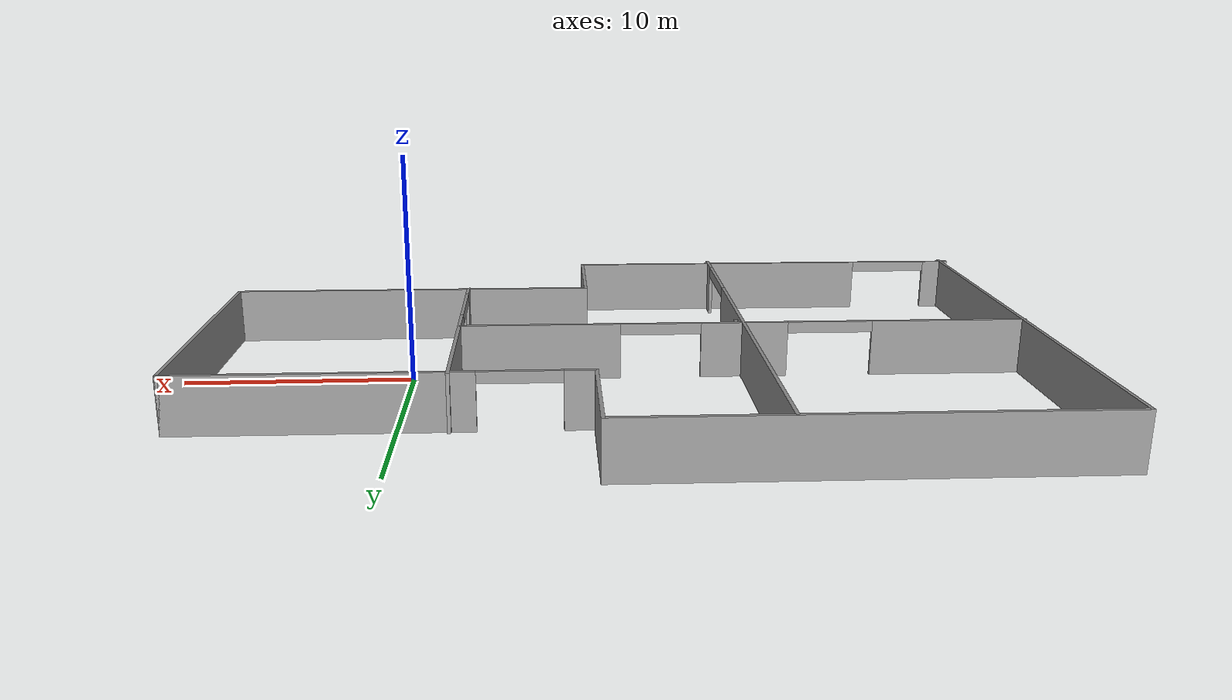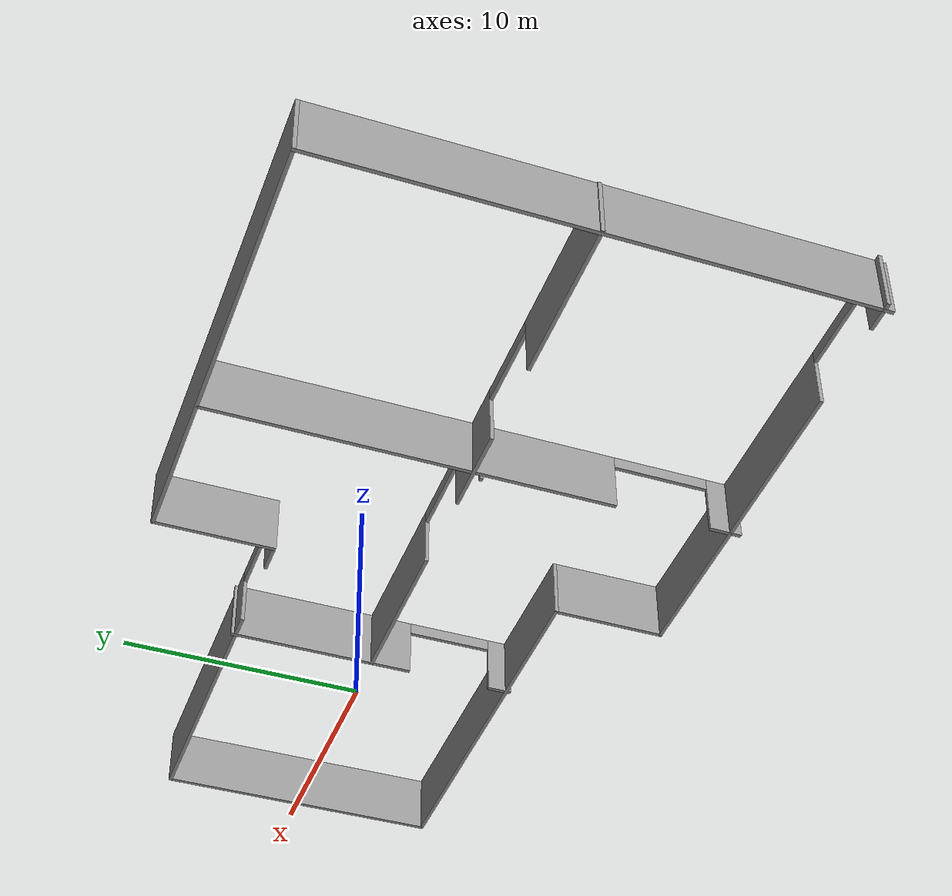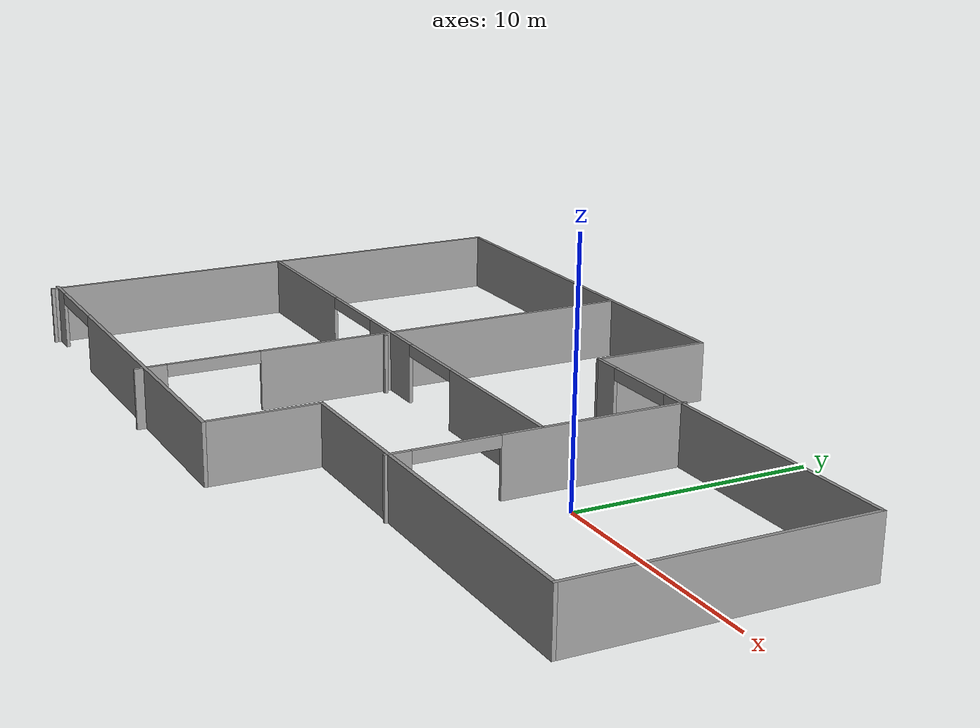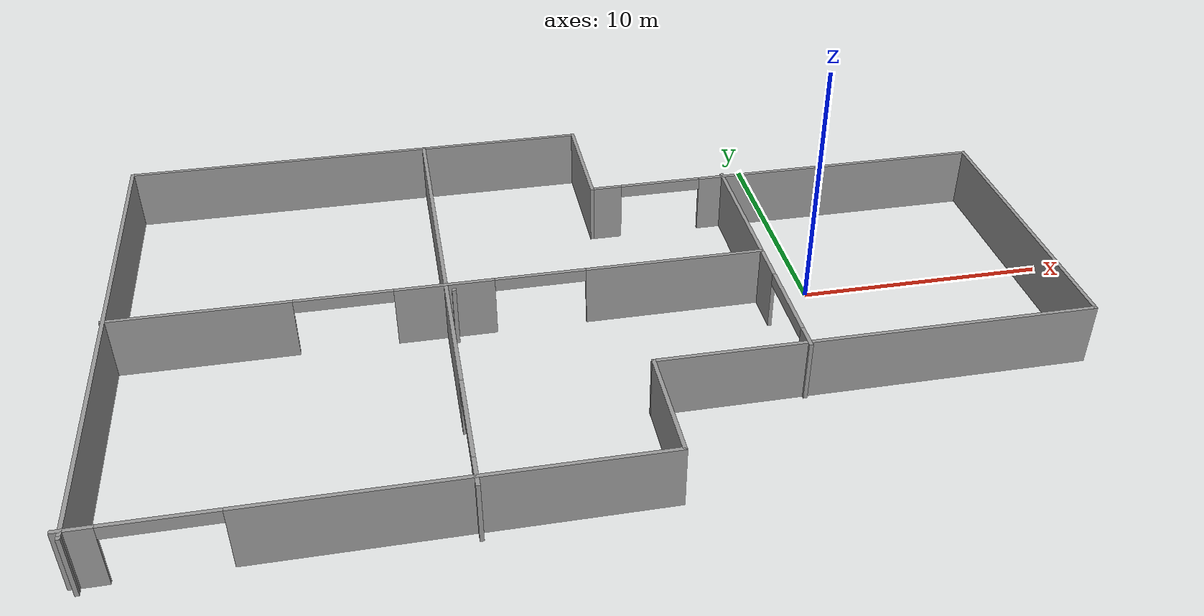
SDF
<?xml version='1.0'?>
<sdf version='1.7'>
  <model name='my_world'>
    <pose>-9.20113 -0.150577 0 0 -0 0</pose>
    <link name='Wall_24'>
      <collision name='Wall_24_Collision'>
        <geometry>
          <box>
            <size>21.75 0.15 2.5</size>
          </box>
        </geometry>
        <pose>0 0 1.25 0 -0 0</pose>
      </collision>
      <visual name='Wall_24_Visual'>
        <pose>0 0 1.25 0 -0 0</pose>
        <geometry>
          <box>
            <size>21.75 0.15 2.5</size>
          </box>
        </geometry>
        <material>
          <script>
            <uri>file://media/materials/scripts/gazebo.material</uri>
            <name>Gazebo/Grey</name>
          </script>
          <ambient>1 1 1 1</ambient>
        </material>
        <meta>
          <layer>0</layer>
        </meta>
      </visual>
      <pose>-17.975 0.03498 0 0 -0 -1.5708</pose>
    </link>
    <link name='Wall_25'>
      <collision name='Wall_25_Collision'>
        <geometry>
          <box>
            <size>0.15 0.15 2.5</size>
          </box>
        </geometry>
        <pose>0 0 1.25 0 -0 0</pose>
      </collision>
      <visual name='Wall_25_Visual'>
        <pose>0 0 1.25 0 -0 0</pose>
        <geometry>
          <box>
            <size>0.15 0.15 2.5</size>
          </box>
        </geometry>
        <material>
          <script>
            <uri>file://media/materials/scripts/gazebo.material</uri>
            <name>Gazebo/Grey</name>
          </script>
          <ambient>1 1 1 1</ambient>
        </material>
        <meta>
          <layer>0</layer>
        </meta>
      </visual>
      <pose>-17.975 -10.765 0 0 -0 0</pose>
    </link>
    <link name='Wall_28'>
      <collision name='Wall_28_Collision'>
        <geometry>
          <box>
            <size>0.16 0.15 2.5</size>
          </box>
        </geometry>
        <pose>0 0 1.25 0 -0 0</pose>
      </collision>
      <visual name='Wall_28_Visual'>
        <pose>0 0 1.25 0 -0 0</pose>
        <geometry>
          <box>
            <size>0.16 0.15 2.5</size>
          </box>
        </geometry>
        <material>
          <script>
            <uri>file://media/materials/scripts/gazebo.material</uri>
            <name>Gazebo/Grey</name>
          </script>
          <ambient>1 1 1 1</ambient>
        </material>
        <meta>
          <layer>0</layer>
        </meta>
      </visual>
      <pose>-5.12 -0.267712 0 0 -0 0</pose>
    </link>
    <link name='Wall_30'>
      <pose>-5.39848 -0.03498 0 0 -0 -1.5708</pose>
      <visual name='Wall_30_Visual_0'>
        <pose>-2.61797 0 1.25 0 -0 0</pose>
        <geometry>
          <box>
            <size>16.5141 0.15 2.5</size>
          </box>
        </geometry>
        <material>
          <script>
            <uri>file://media/materials/scripts/gazebo.material</uri>
            <name>Gazebo/Grey</name>
          </script>
          <ambient>1 1 1 1</ambient>
        </material>
        <meta>
          <layer>0</layer>
        </meta>
      </visual>
      <collision name='Wall_30_Collision_0'>
        <geometry>
          <box>
            <size>16.5141 0.15 2.5</size>
          </box>
        </geometry>
        <pose>-2.61797 0 1.25 0 -0 0</pose>
      </collision>
      <visual name='Wall_30_Visual_1'>
        <pose>10.2081 0 1.25 0 -0 0</pose>
        <geometry>
          <box>
            <size>1.33373 0.15 2.5</size>
          </box>
        </geometry>
        <material>
          <script>
            <uri>file://media/materials/scripts/gazebo.material</uri>
            <name>Gazebo/Grey</name>
          </script>
          <ambient>1 1 1 1</ambient>
        </material>
        <meta>
          <layer>0</layer>
        </meta>
      </visual>
      <collision name='Wall_30_Collision_1'>
        <geometry>
          <box>
            <size>1.33373 0.15 2.5</size>
          </box>
        </geometry>
        <pose>10.2081 0 1.25 0 -0 0</pose>
      </collision>
      <visual name='Wall_30_Visual_2'>
        <pose>7.59016 0 2.25 0 -0 0</pose>
        <geometry>
          <box>
            <size>3.90221 0.15 0.5</size>
          </box>
        </geometry>
        <material>
          <script>
            <uri>file://media/materials/scripts/gazebo.material</uri>
            <name>Gazebo/Grey</name>
          </script>
          <ambient>1 1 1 1</ambient>
        </material>
        <meta>
          <layer>0</layer>
        </meta>
      </visual>
      <collision name='Wall_30_Collision_2'>
        <geometry>
          <box>
            <size>3.90221 0.15 0.5</size>
          </box>
        </geometry>
        <pose>7.59016 0 2.25 0 -0 0</pose>
      </collision>
    </link>
    <link name='Wall_40'>
      <pose>-5.47864 0.124066 0 0 -0 0</pose>
      <visual name='Wall_40_Visual_0'>
        <pose>-9.14528 0 1.25 0 -0 0</pose>
        <geometry>
          <box>
            <size>6.95944 0.15 2.5</size>
          </box>
        </geometry>
        <material>
          <script>
            <uri>file://media/materials/scripts/gazebo.material</uri>
            <name>Gazebo/Grey</name>
          </script>
          <ambient>1 1 1 1</ambient>
        </material>
        <meta>
          <layer>0</layer>
        </meta>
      </visual>
      <collision name='Wall_40_Collision_0'>
        <geometry>
          <box>
            <size>6.95944 0.15 2.5</size>
          </box>
        </geometry>
        <pose>-9.14528 0 1.25 0 -0 0</pose>
      </collision>
      <visual name='Wall_40_Visual_1'>
        <pose>0.03146 0 1.25 0 -0 0</pose>
        <geometry>
          <box>
            <size>3.8573 0.15 2.5</size>
          </box>
        </geometry>
        <material>
          <script>
            <uri>file://media/materials/scripts/gazebo.material</uri>
            <name>Gazebo/Grey</name>
          </script>
          <ambient>1 1 1 1</ambient>
        </material>
        <meta>
          <layer>0</layer>
        </meta>
      </visual>
      <collision name='Wall_40_Collision_1'>
        <geometry>
          <box>
            <size>3.8573 0.15 2.5</size>
          </box>
        </geometry>
        <pose>0.03146 0 1.25 0 -0 0</pose>
      </collision>
      <visual name='Wall_40_Visual_2'>
        <pose>9.0718 0 1.25 0 -0 0</pose>
        <geometry>
          <box>
            <size>7.1064 0.15 2.5</size>
          </box>
        </geometry>
        <material>
          <script>
            <uri>file://media/materials/scripts/gazebo.material</uri>
            <name>Gazebo/Grey</name>
          </script>
          <ambient>1 1 1 1</ambient>
        </material>
        <meta>
          <layer>0</layer>
        </meta>
      </visual>
      <collision name='Wall_40_Collision_2'>
        <geometry>
          <box>
            <size>7.1064 0.15 2.5</size>
          </box>
        </geometry>
        <pose>9.0718 0 1.25 0 -0 0</pose>
      </collision>
      <visual name='Wall_40_Visual_3'>
        <pose>-3.78137 0 2.25 0 -0 0</pose>
        <geometry>
          <box>
            <size>3.76837 0.15 0.5</size>
          </box>
        </geometry>
        <material>
          <script>
            <uri>file://media/materials/scripts/gazebo.material</uri>
            <name>Gazebo/Grey</name>
          </script>
          <ambient>1 1 1 1</ambient>
        </material>
        <meta>
          <layer>0</layer>
        </meta>
      </visual>
      <collision name='Wall_40_Collision_3'>
        <geometry>
          <box>
            <size>3.76837 0.15 0.5</size>
          </box>
        </geometry>
        <pose>-3.78137 0 2.25 0 -0 0</pose>
      </collision>
      <visual name='Wall_40_Visual_4'>
        <pose>3.73935 0 2.25 0 -0 0</pose>
        <geometry>
          <box>
            <size>3.55849 0.15 0.5</size>
          </box>
        </geometry>
        <material>
          <script>
            <uri>file://media/materials/scripts/gazebo.material</uri>
            <name>Gazebo/Grey</name>
          </script>
          <ambient>1 1 1 1</ambient>
        </material>
        <meta>
          <layer>0</layer>
        </meta>
      </visual>
      <collision name='Wall_40_Collision_4'>
        <geometry>
          <box>
            <size>3.55849 0.15 0.5</size>
          </box>
        </geometry>
        <pose>3.73935 0 2.25 0 -0 0</pose>
      </collision>
    </link>
    <link name='Wall_42'>
      <collision name='Wall_42_Collision'>
        <geometry>
          <box>
            <size>19.5 0.15 2.5</size>
          </box>
        </geometry>
        <pose>0 0 1.25 0 -0 0</pose>
      </collision>
      <visual name='Wall_42_Visual'>
        <pose>0 0 1.25 0 -0 0</pose>
        <geometry>
          <box>
            <size>19.5 0.15 2.5</size>
          </box>
        </geometry>
        <material>
          <script>
            <uri>file://media/materials/scripts/gazebo.material</uri>
            <name>Gazebo/Grey</name>
          </script>
          <ambient>1 1 1 1</ambient>
        </material>
        <meta>
          <layer>0</layer>
        </meta>
      </visual>
      <pose>-8.3 10.835 0 0 -0 0</pose>
    </link>
    <link name='Wall_43'>
      <collision name='Wall_43_Collision'>
        <geometry>
          <box>
            <size>5 0.15 2.5</size>
          </box>
        </geometry>
        <pose>0 0 1.25 0 -0 0</pose>
      </collision>
      <visual name='Wall_43_Visual'>
        <pose>0 0 1.25 0 -0 0</pose>
        <geometry>
          <box>
            <size>5 0.15 2.5</size>
          </box>
        </geometry>
        <material>
          <script>
            <uri>file://media/materials/scripts/gazebo.material</uri>
            <name>Gazebo/Grey</name>
          </script>
          <ambient>1 1 1 1</ambient>
        </material>
        <meta>
          <layer>0</layer>
        </meta>
      </visual>
      <pose>1.375 8.40998 0 0 -0 -1.5708</pose>
    </link>
    <link name='Wall_44'>
      <pose>9.8 5.98498 0 0 -0 0</pose>
      <visual name='Wall_44_Visual_0'>
        <pose>-7.83101 0 1.25 0 -0 0</pose>
        <geometry>
          <box>
            <size>1.33797 0.15 2.5</size>
          </box>
        </geometry>
        <material>
          <script>
            <uri>file://media/materials/scripts/gazebo.material</uri>
            <name>Gazebo/Grey</name>
          </script>
          <ambient>1 1 1 1</ambient>
        </material>
        <meta>
          <layer>0</layer>
        </meta>
      </visual>
      <collision name='Wall_44_Collision_0'>
        <geometry>
          <box>
            <size>1.33797 0.15 2.5</size>
          </box>
        </geometry>
        <pose>-7.83101 0 1.25 0 -0 0</pose>
      </collision>
      <visual name='Wall_44_Visual_1'>
        <pose>2.37827 0 1.25 0 -0 0</pose>
        <geometry>
          <box>
            <size>12.2435 0.15 2.5</size>
          </box>
        </geometry>
        <material>
          <script>
            <uri>file://media/materials/scripts/gazebo.material</uri>
            <name>Gazebo/Grey</name>
          </script>
          <ambient>1 1 1 1</ambient>
        </material>
        <meta>
          <layer>0</layer>
        </meta>
      </visual>
      <collision name='Wall_44_Collision_1'>
        <geometry>
          <box>
            <size>12.2435 0.15 2.5</size>
          </box>
        </geometry>
        <pose>2.37827 0 1.25 0 -0 0</pose>
      </collision>
      <visual name='Wall_44_Visual_2'>
        <pose>-5.45274 0 2.25 0 -0 0</pose>
        <geometry>
          <box>
            <size>3.41857 0.15 0.5</size>
          </box>
        </geometry>
        <material>
          <script>
            <uri>file://media/materials/scripts/gazebo.material</uri>
            <name>Gazebo/Grey</name>
          </script>
          <ambient>1 1 1 1</ambient>
        </material>
        <meta>
          <layer>0</layer>
        </meta>
      </visual>
      <collision name='Wall_44_Collision_2'>
        <geometry>
          <box>
            <size>3.41857 0.15 0.5</size>
          </box>
        </geometry>
        <pose>-5.45274 0 2.25 0 -0 0</pose>
      </collision>
    </link>
    <link name='Wall_45'>
      <collision name='Wall_45_Collision'>
        <geometry>
          <box>
            <size>12 0.15 2.5</size>
          </box>
        </geometry>
        <pose>0 0 1.25 0 -0 0</pose>
      </collision>
      <visual name='Wall_45_Visual'>
        <pose>0 0 1.25 0 -0 0</pose>
        <geometry>
          <box>
            <size>12 0.15 2.5</size>
          </box>
        </geometry>
        <material>
          <script>
            <uri>file://media/materials/scripts/gazebo.material</uri>
            <name>Gazebo/Grey</name>
          </script>
          <ambient>1 1 1 1</ambient>
        </material>
        <meta>
          <layer>0</layer>
        </meta>
      </visual>
      <pose>18.225 0.05998 0 0 -0 -1.5708</pose>
    </link>
    <link name='Wall_46'>
      <collision name='Wall_46_Collision'>
        <geometry>
          <box>
            <size>17 0.15 2.5</size>
          </box>
        </geometry>
        <pose>0 0 1.25 0 -0 0</pose>
      </collision>
      <visual name='Wall_46_Visual'>
        <pose>0 0 1.25 0 -0 0</pose>
        <geometry>
          <box>
            <size>17 0.15 2.5</size>
          </box>
        </geometry>
        <material>
          <script>
            <uri>file://media/materials/scripts/gazebo.material</uri>
            <name>Gazebo/Grey</name>
          </script>
          <ambient>1 1 1 1</ambient>
        </material>
        <meta>
          <layer>0</layer>
        </meta>
      </visual>
      <pose>9.8 -5.86502 0 0 -0 3.14159</pose>
    </link>
    <link name='Wall_47'>
      <collision name='Wall_47_Collision'>
        <geometry>
          <box>
            <size>4.75 0.15 2.5</size>
          </box>
        </geometry>
        <pose>0 0 1.25 0 -0 0</pose>
      </collision>
      <visual name='Wall_47_Visual'>
        <pose>0 0 1.25 0 -0 0</pose>
        <geometry>
          <box>
            <size>4.75 0.15 2.5</size>
          </box>
        </geometry>
        <material>
          <script>
            <uri>file://media/materials/scripts/gazebo.material</uri>
            <name>Gazebo/Grey</name>
          </script>
          <ambient>1 1 1 1</ambient>
        </material>
        <meta>
          <layer>0</layer>
        </meta>
      </visual>
      <pose>1.375 -8.16502 0 0 -0 -1.5708</pose>
    </link>
    <link name='Wall_48'>
      <pose>-8.425 -10.465 0 0 -0 3.14159</pose>
      <visual name='Wall_48_Visual_0'>
        <pose>-2.55496 0 1.25 0 -0 0</pose>
        <geometry>
          <box>
            <size>14.6401 0.15 2.5</size>
          </box>
        </geometry>
        <material>
          <script>
            <uri>file://media/materials/scripts/gazebo.material</uri>
            <name>Gazebo/Grey</name>
          </script>
          <ambient>1 1 1 1</ambient>
        </material>
        <meta>
          <layer>0</layer>
        </meta>
      </visual>
      <collision name='Wall_48_Collision_0'>
        <geometry>
          <box>
            <size>14.6401 0.15 2.5</size>
          </box>
        </geometry>
        <pose>-2.55496 0 1.25 0 -0 0</pose>
      </collision>
      <visual name='Wall_48_Visual_1'>
        <pose>9.21956 0 1.25 0 -0 0</pose>
        <geometry>
          <box>
            <size>1.31088 0.15 2.5</size>
          </box>
        </geometry>
        <material>
          <script>
            <uri>file://media/materials/scripts/gazebo.material</uri>
            <name>Gazebo/Grey</name>
          </script>
          <ambient>1 1 1 1</ambient>
        </material>
        <meta>
          <layer>0</layer>
        </meta>
      </visual>
      <collision name='Wall_48_Collision_1'>
        <geometry>
          <box>
            <size>1.31088 0.15 2.5</size>
          </box>
        </geometry>
        <pose>9.21956 0 1.25 0 -0 0</pose>
      </collision>
      <visual name='Wall_48_Visual_2'>
        <pose>6.66461 0 2.25 0 -0 0</pose>
        <geometry>
          <box>
            <size>3.79904 0.15 0.5</size>
          </box>
        </geometry>
        <material>
          <script>
            <uri>file://media/materials/scripts/gazebo.material</uri>
            <name>Gazebo/Grey</name>
          </script>
          <ambient>1 1 1 1</ambient>
        </material>
        <meta>
          <layer>0</layer>
        </meta>
      </visual>
      <collision name='Wall_48_Collision_2'>
        <geometry>
          <box>
            <size>3.79904 0.15 0.5</size>
          </box>
        </geometry>
        <pose>6.66461 0 2.25 0 -0 0</pose>
      </collision>
    </link>
    <link name='Wall_50'>
      <pose>7.12674 0.064995 0 0 -0 -1.5708</pose>
      <visual name='Wall_50_Visual_0'>
        <pose>-2.25833 0 1.25 0 -0 0</pose>
        <geometry>
          <box>
            <size>7.73334 0.15 2.5</size>
          </box>
        </geometry>
        <material>
          <script>
            <uri>file://media/materials/scripts/gazebo.material</uri>
            <name>Gazebo/Grey</name>
          </script>
          <ambient>1 1 1 1</ambient>
        </material>
        <meta>
          <layer>0</layer>
        </meta>
      </visual>
      <collision name='Wall_50_Collision_0'>
        <geometry>
          <box>
            <size>7.73334 0.15 2.5</size>
          </box>
        </geometry>
        <pose>-2.25833 0 1.25 0 -0 0</pose>
      </collision>
      <visual name='Wall_50_Visual_1'>
        <pose>5.61093 0 1.25 0 -0 0</pose>
        <geometry>
          <box>
            <size>1.02813 0.15 2.5</size>
          </box>
        </geometry>
        <material>
          <script>
            <uri>file://media/materials/scripts/gazebo.material</uri>
            <name>Gazebo/Grey</name>
          </script>
          <ambient>1 1 1 1</ambient>
        </material>
        <meta>
          <layer>0</layer>
        </meta>
      </visual>
      <collision name='Wall_50_Collision_1'>
        <geometry>
          <box>
            <size>1.02813 0.15 2.5</size>
          </box>
        </geometry>
        <pose>5.61093 0 1.25 0 -0 0</pose>
      </collision>
      <visual name='Wall_50_Visual_2'>
        <pose>3.3526 0 2.25 0 -0 0</pose>
        <geometry>
          <box>
            <size>3.48853 0.15 0.5</size>
          </box>
        </geometry>
        <material>
          <script>
            <uri>file://media/materials/scripts/gazebo.material</uri>
            <name>Gazebo/Grey</name>
          </script>
          <ambient>1 1 1 1</ambient>
        </material>
        <meta>
          <layer>0</layer>
        </meta>
      </visual>
      <collision name='Wall_50_Collision_2'>
        <geometry>
          <box>
            <size>3.48853 0.15 0.5</size>
          </box>
        </geometry>
        <pose>3.3526 0 2.25 0 -0 0</pose>
      </collision>
    </link>
    <static>1</static>
  </model>
</sdf>
